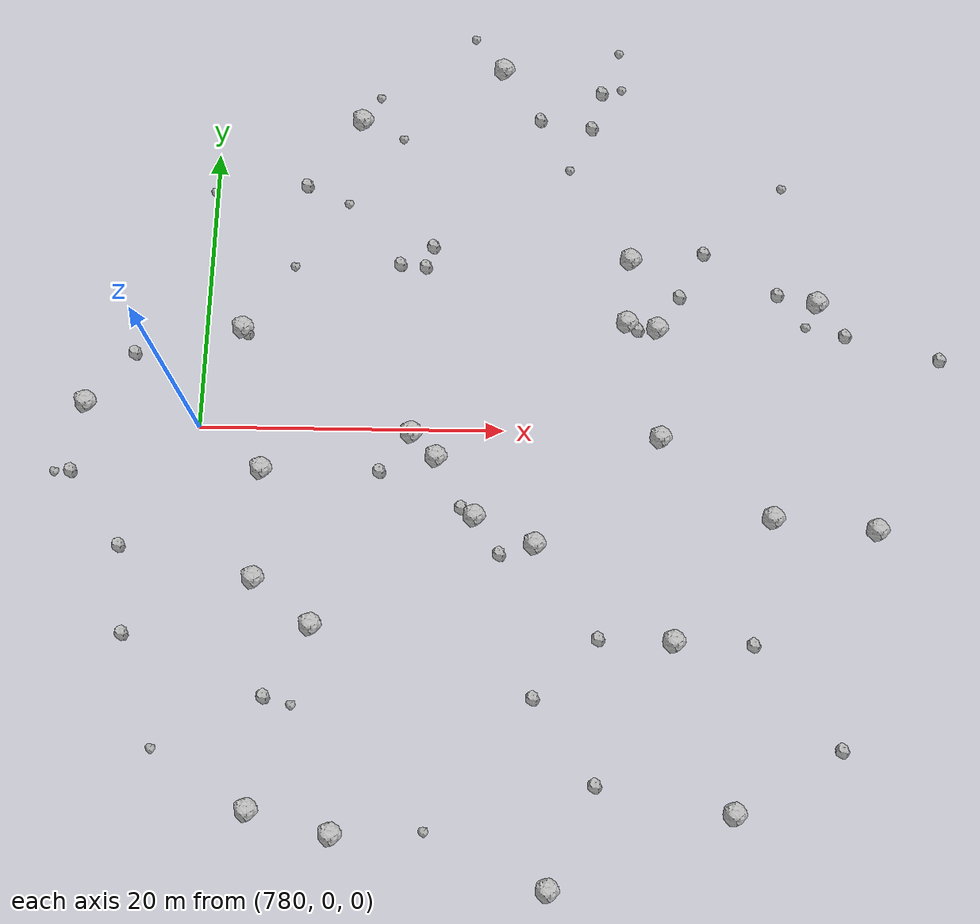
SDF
<sdf version="1.6">
 <world name="default">
  <include><uri>model://sun</uri></include>
  <model name="rock1_20_4">
   <include><uri>model://rock1</uri><pose>817.3974024869342 -5.7626877056030565 0.5 0 0 0</pose></include>
  </model>
  <model name="rock1_20_5">
   <include><uri>model://rock1</uri><pose>808.1709856587553 7.670887627690583 0.5 0 0 0</pose></include>
  </model>
  <model name="rock1_20_6">
   <include><uri>model://rock1</uri><pose>802.9748121929047 -28.86434385155144 0.5 0 0 0</pose></include>
  </model>
  <model name="rock1_20_7">
   <include><uri>model://rock1</uri><pose>789.892828288418 -25.800404918601693 0.5 0 0 0</pose></include>
  </model>
  <model name="rock1_20_8">
   <include><uri>model://rock1</uri><pose>810.8389003583238 -13.824921180822852 0.5 0 0 0</pose></include>
  </model>
  <model name="rock1_20_9">
   <include><uri>model://rock1</uri><pose>820.9566913057876 9.240789497637117 0.5 0 0 0</pose></include>
  </model>
  <model name="rock1_20_10">
   <include><uri>model://rock1</uri><pose>784.7679910118876 -24.441483016303415 0.5 0 0 0</pose></include>
  </model>
  <model name="rock1_20_11">
   <include><uri>model://rock1</uri><pose>782.4879032751625 6.9451860057399415 0.5 0 0 0</pose></include>
  </model>
  <model name="rock1_20_12">
   <include><uri>model://rock1</uri><pose>788.0189362090631 -13.054917500904413 0.5 0 0 0</pose></include>
  </model>
  <model name="rock1_20_13">
   <include><uri>model://rock1</uri><pose>784.2423329415773 -10.110320138191756 0.5 0 0 0</pose></include>
  </model>
  <model name="rock1_20_14">
   <include><uri>model://rock1</uri><pose>810.2611696940124 -0.41357762182875746 0.5 0 0 0</pose></include>
  </model>
  <model name="rock1_20_15">
   <include><uri>model://rock1</uri><pose>802.080464686269 -7.66105832213842 0.5 0 0 0</pose></include>
  </model>
  <model name="rock1_20_16">
   <include><uri>model://rock1</uri><pose>810.1818928272708 7.2624812706785775 0.5 0 0 0</pose></include>
  </model>
  <model name="rock1_20_17">
   <include><uri>model://rock1</uri><pose>798.1826475524914 -5.860978524547697 0.5 0 0 0</pose></include>
  </model>
  <model name="rock1_20_18">
   <include><uri>model://rock1</uri><pose>772.4783922793556 1.5653427966223106 0.5 0 0 0</pose></include>
  </model>
  <model name="rock1_20_19">
   <include><uri>model://rock1</uri><pose>814.2752896835477 -24.296926720191408 0.5 0 0 0</pose></include>
  </model>
  <model name="rock1_20_20">
   <include><uri>model://rock1</uri><pose>784.2981568825647 -2.8723744358845664 0.5 0 0 0</pose></include>
  </model>
  <model name="rock1_20_21">
   <include><uri>model://rock1</uri><pose>789.8721962171994 22.706938179468153 0.5 0 0 0</pose></include>
  </model>
  <model name="rock1_20_22">
   <include><uri>model://rock1</uri><pose>824.0313042671273 -6.462461107056885 0.5 0 0 0</pose></include>
  </model>
  <model name="rock1_20_23">
   <include><uri>model://rock1</uri><pose>808.4730427811869 12.266071397596946 0.5 0 0 0</pose></include>
  </model>
  <model name="rock1_20_24">
   <include><uri>model://rock1</uri><pose>793.9710132424507 -0.28705392251267625 0.5 0 0 0</pose></include>
  </model>
  <model name="rock1_20_25">
   <include><uri>model://rock1</uri><pose>795.6244667961919 -1.905276105967939 0.5 0 0 0</pose></include>
  </model>
  <model name="rock1_20_26">
   <include><uri>model://rock1</uri><pose>799.7085991563383 26.89693255241525 0.5 0 0 0</pose></include>
  </model>
  <model name="rock2_20_0">
   <include><uri>model://rock2</uri><pose>805.8291981312883 -22.718223750480142 0.3 0 0 0</pose></include>
  </model>
  <model name="rock2_20_1">
   <include><uri>model://rock2</uri><pose>785.3192135193083 -17.56912637814314 0.3 0 0 0</pose></include>
  </model>
  <model name="rock2_20_2">
   <include><uri>model://rock2</uri><pose>775.4901688348107 -8.066678286054326 0.3 0 0 0</pose></include>
  </model>
  <model name="rock2_20_3">
   <include><uri>model://rock2</uri><pose>806.6035580370375 25.20020299662005 0.3 0 0 0</pose></include>
  </model>
  <model name="rock2_20_4">
   <include><uri>model://rock2</uri><pose>802.0053840608012 -17.467389791858643 0.3 0 0 0</pose></include>
  </model>
  <model name="rock2_20_5">
   <include><uri>model://rock2</uri><pose>813.427332210097 12.847335666349643 0.3 0 0 0</pose></include>
  </model>
  <model name="rock2_20_6">
   <include><uri>model://rock2</uri><pose>775.399673709898 5.114414028397675 0.3 0 0 0</pose></include>
  </model>
  <model name="rock2_20_7">
   <include><uri>model://rock2</uri><pose>791.9546584321062 -2.900447435249397 0.3 0 0 0</pose></include>
  </model>
  <model name="rock2_20_8">
   <include><uri>model://rock2</uri><pose>806.0870955290818 -13.713246479809516 0.3 0 0 0</pose></include>
  </model>
  <model name="rock2_20_9">
   <include><uri>model://rock2</uri><pose>797.316794355925 -5.294616120123305 0.3 0 0 0</pose></include>
  </model>
  <model name="rock2_20_10">
   <include><uri>model://rock2</uri><pose>776.2029637671873 -13.72841601651892 0.3 0 0 0</pose></include>
  </model>
  <model name="rock2_20_11">
   <include><uri>model://rock2</uri><pose>828.8827928755437 5.306320526291316 0.3 0 0 0</pose></include>
  </model>
  <model name="rock2_20_12">
   <include><uri>model://rock2</uri><pose>799.8051148401363 -8.32383978419594 0.3 0 0 0</pose></include>
  </model>
  <model name="rock2_20_13">
   <include><uri>model://rock2</uri><pose>815.82854801128 -13.980435442537559 0.3 0 0 0</pose></include>
  </model>
  <model name="rock2_20_14">
   <include><uri>model://rock2</uri><pose>771.9147229948034 -3.116055673915529 0.3 0 0 0</pose></include>
  </model>
  <model name="rock2_20_15">
   <include><uri>model://rock2</uri><pose>792.8469341780196 11.808368227069892 0.3 0 0 0</pose></include>
  </model>
  <model name="rock2_20_16">
   <include><uri>model://rock2</uri><pose>802.2995718613307 23.00252673432056 0.3 0 0 0</pose></include>
  </model>
  <model name="rock2_20_17">
   <include><uri>model://rock2</uri><pose>818.3155014702495 9.858975450357569 0.3 0 0 0</pose></include>
  </model>
  <model name="rock2_20_18">
   <include><uri>model://rock2</uri><pose>805.8846364332765 22.40710946416052 0.3 0 0 0</pose></include>
  </model>
  <model name="rock2_20_19">
   <include><uri>model://rock2</uri><pose>808.8665313075544 7.201834791455923 0.3 0 0 0</pose></include>
  </model>
  <model name="rock2_20_20">
   <include><uri>model://rock2</uri><pose>822.704197446997 6.931692315465298 0.3 0 0 0</pose></include>
  </model>
  <model name="rock2_20_21">
   <include><uri>model://rock2</uri><pose>786.2108848202864 17.654637213699857 0.3 0 0 0</pose></include>
  </model>
  <model name="rock2_20_22">
   <include><uri>model://rock2</uri><pose>820.9967801720248 -20.41600415881106 0.3 0 0 0</pose></include>
  </model>
  <model name="rock2_20_23">
   <include><uri>model://rock2</uri><pose>795.0521342991743 13.160863903959296 0.3 0 0 0</pose></include>
  </model>
  <model name="rock2_20_24">
   <include><uri>model://rock2</uri><pose>811.7150560593709 9.630230798161755 0.3 0 0 0</pose></include>
  </model>
  <model name="rock2_20_25">
   <include><uri>model://rock2</uri><pose>794.5801013743954 11.635318750841556 0.3 0 0 0</pose></include>
  </model>
  <model name="rock2_20_26">
   <include><uri>model://rock2</uri><pose>782.7705425480642 6.665156958895864 0.3 0 0 0</pose></include>
  </model>
  <model name="rock3_20_0">
   <include><uri>model://rock3</uri><pose>770.8215131245514 -3.1946180145402856 0.2 0 0 0</pose></include>
  </model>
  <model name="rock3_20_1">
   <include><uri>model://rock3</uri><pose>792.729234983101 21.376144570431755 0.2 0 0 0</pose></include>
  </model>
  <model name="rock3_20_2">
   <include><uri>model://rock3</uri><pose>795.4571377112692 -25.58773243361874 0.2 0 0 0</pose></include>
  </model>
  <model name="rock3_20_3">
   <include><uri>model://rock3</uri><pose>785.6720183946943 11.552425100806815 0.2 0 0 0</pose></include>
  </model>
  <model name="rock3_20_4">
   <include><uri>model://rock3</uri><pose>804.3215920523012 19.09558042876091 0.2 0 0 0</pose></include>
  </model>
  <model name="rock3_20_5">
   <include><uri>model://rock3</uri><pose>779.8657648631582 17.09119093789409 0.2 0 0 0</pose></include>
  </model>
  <model name="rock3_20_6">
   <include><uri>model://rock3</uri><pose>818.9266004785451 17.852545321817445 0.2 0 0 0</pose></include>
  </model>
  <model name="rock3_20_7">
   <include><uri>model://rock3</uri><pose>778.591225513345 -20.845893035330715 0.2 0 0 0</pose></include>
  </model>
  <model name="rock3_20_8">
   <include><uri>model://rock3</uri><pose>807.9794562939273 25.480645325353485 0.2 0 0 0</pose></include>
  </model>
  <model name="rock3_20_9">
   <include><uri>model://rock3</uri><pose>791.0275255316341 24.61919177702383 0.2 0 0 0</pose></include>
  </model>
  <model name="rock3_20_10">
   <include><uri>model://rock3</uri><pose>820.1028911419664 7.5268377375294335 0.2 0 0 0</pose></include>
  </model>
  <model name="rock3_20_11">
   <include><uri>model://rock3</uri><pose>789.1306505038667 16.322884104655124 0.2 0 0 0</pose></include>
  </model>
  <model name="rock3_20_12">
   <include><uri>model://rock3</uri><pose>807.8307978068976 28.446946348848456 0.2 0 0 0</pose></include>
  </model>
  <model name="rock3_20_13">
   <include><uri>model://rock3</uri><pose>797.6342534649059 29.47670621543272 0.2 0 0 0</pose></include>
  </model>
  <model name="rock3_20_14">
   <include><uri>model://rock3</uri><pose>787.0328675975803 -18.080653738917487 0.2 0 0 0</pose></include>
  </model>
 </world>
</sdf>
